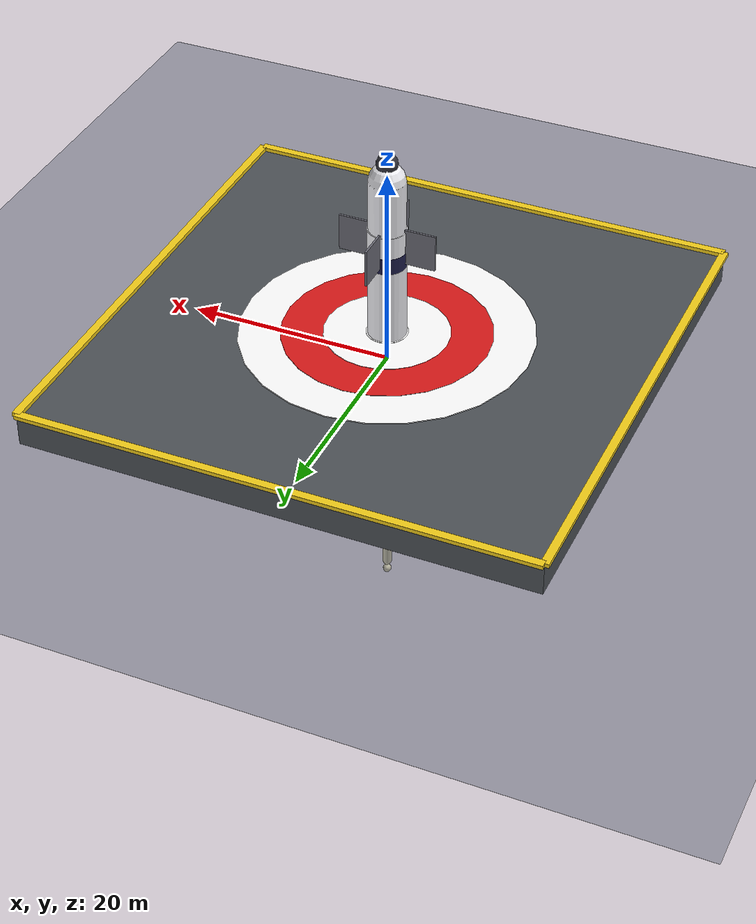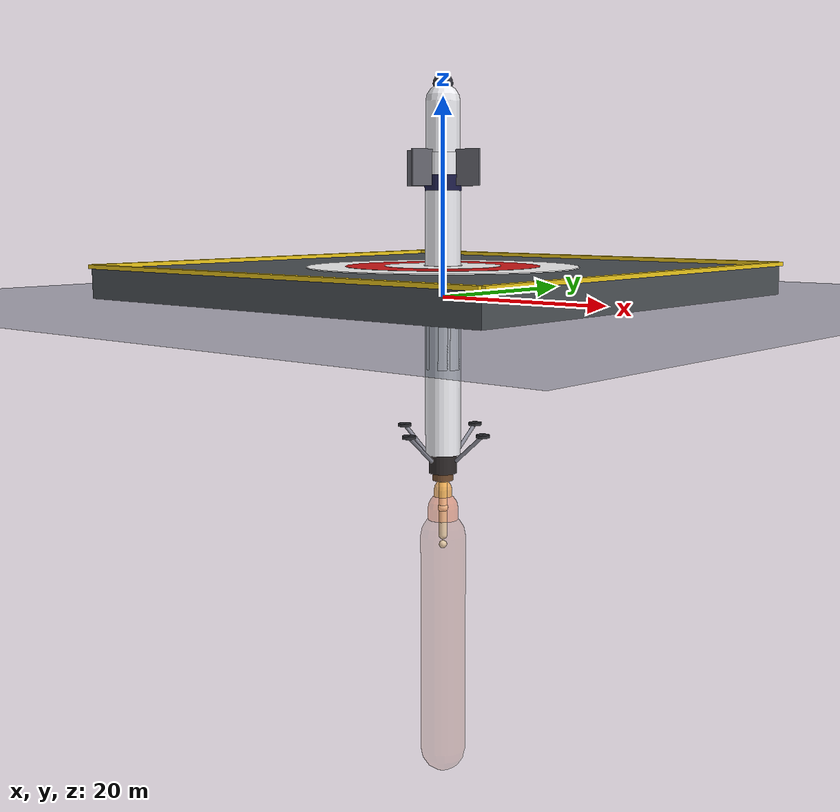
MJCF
<mujoco model="booster_cinematic">
  <option timestep="0.005" gravity="0 0 -9.81"/>
  <visual>
    <global offwidth="1280" offheight="720"/>
    <quality shadowsize="4096"/>
    <headlight ambient="0.22 0.24 0.30" diffuse="0.0 0.0 0.0" specular="0.0 0.0 0.0"/>
    <map shadowscale="0.5" fogstart="2000" fogend="6000"/>
  </visual>
  <asset>
    <!-- Sky: gradient — warm horizon to deep navy overhead -->
    <texture name="sky" type="skybox" builtin="gradient"
             rgb1="0.20 0.32 0.55" rgb2="0.96 0.55 0.28"
             width="1024" height="1024"/>
    <!-- Ocean: a near-uniform deep cobalt with subtle banding so it looks like
         water, not a chessboard. We use the 'flat' built-in type. -->
    <texture name="ocean_tex" type="2d" builtin="flat"
             rgb1="0.04 0.10 0.20" rgb2="0.04 0.10 0.20"
             width="100" height="100" mark="random" markrgb="0.06 0.16 0.28" random="0.10"/>
    <material name="ocean" texture="ocean_tex" texrepeat="40 40"
              reflectance="0.45" shininess="0.7" specular="0.7"/>
    <!-- Drone-ship deck -->
    <material name="deck"   rgba="0.30 0.32 0.34 1.0" reflectance="0.05"/>
    <material name="deck_edge" rgba="0.95 0.80 0.10 1.0"/>
    <material name="target_ring1" rgba="1.00 1.00 1.00 1.0"/>
    <material name="target_ring2" rgba="0.85 0.10 0.10 1.0"/>
    <material name="target_center" rgba="1.00 1.00 1.00 1.0"/>
    <!-- Booster materials -->
    <material name="booster_white" rgba="0.94 0.94 0.96 1.0" reflectance="0.30" shininess="0.5"/>
    <material name="booster_band"  rgba="0.18 0.18 0.20 1.0" reflectance="0.10"/>
    <material name="booster_logo"  rgba="0.12 0.12 0.30 1.0"/>
    <material name="nose_mat"      rgba="0.94 0.94 0.96 1.0" reflectance="0.30"/>
    <material name="nose_tip"      rgba="0.20 0.20 0.24 1.0"/>
    <material name="leg_mat"       rgba="0.55 0.55 0.60 1.0" reflectance="0.20"/>
    <material name="leg_pad"       rgba="0.18 0.18 0.20 1.0"/>
    <material name="fin_mat"       rgba="0.42 0.42 0.46 1.0" reflectance="0.15"/>
    <material name="engine_bell"   rgba="0.18 0.16 0.16 1.0" reflectance="0.05"/>
    <material name="engine_nozzle" rgba="0.45 0.30 0.18 1.0"/>
    <!-- Plume layers, with emission so they glow even on the unlit side of the booster -->
    <material name="plume_core"  rgba="1.00 0.95 0.80 0.95" emission="0.9"/>
    <material name="plume_mid"   rgba="1.00 0.65 0.20 0.65" emission="0.5"/>
    <material name="plume_outer" rgba="0.95 0.35 0.10 0.35" emission="0.3"/>
    <material name="plume_haze"  rgba="0.55 0.20 0.10 0.18" emission="0.1"/>
  </asset>
  <worldbody>
    <!-- Golden-hour sun (low elevation, raked from one side) -->
    <light name="sun" mode="targetbodycom" target="booster"
           pos="-3000 1500 1200" dir="0.6 -0.3 -0.7"
           diffuse="1.10 0.92 0.78" specular="0.5 0.42 0.35"
           castshadow="true"/>
    <!-- Cool blue fill -->
    <light name="fill" pos="2500 -1500 800" dir="-0.5 0.3 -0.5"
           diffuse="0.28 0.32 0.42" specular="0.0 0.0 0.0"
           castshadow="false"/>

    <!-- Ocean surface (huge plane, slight reflectance to give a water sheen) -->
    <geom name="ocean_surface" type="plane" size="6000 6000 1" material="ocean"/>

    <!-- Drone-ship deck -->
    <geom name="deck"        type="box" pos="0 0 1.5"   size="25 25 1.5"  material="deck"/>
    <geom name="deck_edge_n" type="box" pos="0  25 3.2" size="25 0.4 0.2" material="deck_edge"/>
    <geom name="deck_edge_s" type="box" pos="0 -25 3.2" size="25 0.4 0.2" material="deck_edge"/>
    <geom name="deck_edge_e" type="box" pos=" 25 0 3.2" size="0.4 25 0.2" material="deck_edge"/>
    <geom name="deck_edge_w" type="box" pos="-25 0 3.2" size="0.4 25 0.2" material="deck_edge"/>
    <!-- Concentric landing target -->
    <geom name="target_ring_outer" type="cylinder" pos="0 0 3.05" size="14 0.05" material="target_ring1"/>
    <geom name="target_ring_mid"   type="cylinder" pos="0 0 3.08" size="10 0.05" material="target_ring2"/>
    <geom name="target_ring_in"    type="cylinder" pos="0 0 3.11" size="6  0.05" material="target_ring1"/>
    <geom name="target_center"     type="cylinder" pos="0 0 3.14" size="2  0.05" material="target_center"/>

    <!-- BOOSTER ----------------------------------------------------------------- -->
    <body name="booster" pos="0 0 3.5">
      <freejoint name="root"/>

      <!-- Main hull: lower section + black band + upper section, all sharing axis -->
      <geom name="hull_lower" type="cylinder" pos="0 0 -12.0" size="1.85 8"
            material="booster_white"/>
      <geom name="hull_band"  type="cylinder" pos="0 0 -4.0"  size="1.8685 0.6"
            material="booster_band"/>
      <geom name="hull_upper" type="cylinder" pos="0 0 0"  size="1.85 11.0"
            material="booster_white"/>
      <!-- Logo band near top of upper hull -->
      <geom name="logo_band" type="cylinder" pos="0 0 8.0" size="1.8592499999999998 0.8"
            material="booster_logo"/>
      <!-- Nose cone — capsule centered to attach top of upper hull, plus a darker tip -->
      <geom name="nose" type="capsule" pos="0 0 13.5" size="1.7575 2.5"
            material="nose_mat"/>
      <geom name="nose_tip" type="sphere" pos="0 0 17.7575"
            size="1.0175" material="nose_tip"/>

      <!-- Grid fins: bigger, lattice-coloured, attached to body at the top section -->
      <geom name="fin_xp" type="box" pos=" 3.25 0  9.5"
            size="1.5 0.10 1.8" material="fin_mat"/>
      <geom name="fin_xn" type="box" pos="-3.25 0  9.5"
            size="1.5 0.10 1.8" material="fin_mat"/>
      <geom name="fin_yp" type="box" pos="0  3.25 9.5"
            size="0.10 1.5 1.8" material="fin_mat"/>
      <geom name="fin_yn" type="box" pos="0 -3.25 9.5"
            size="0.10 1.5 1.8" material="fin_mat"/>

      <!-- Four landing legs deployed, with foot pads (attached to body, not gimbal) -->
      <geom name="leg_xp" type="capsule"
            fromto=" 1.85 0 -20.5  5.35 0 -17.5"
            size="0.20" material="leg_mat"/>
      <geom name="leg_xn" type="capsule"
            fromto="-1.85 0 -20.5 -5.35 0 -17.5"
            size="0.20" material="leg_mat"/>
      <geom name="leg_yp" type="capsule"
            fromto="0  1.85 -20.5  0  5.35 -17.5"
            size="0.20" material="leg_mat"/>
      <geom name="leg_yn" type="capsule"
            fromto="0 -1.85 -20.5  0 -5.35 -17.5"
            size="0.20" material="leg_mat"/>
      <geom name="pad_xp" type="cylinder" pos=" 5.35 0 -17.5" size="0.7 0.15"
            material="leg_pad"/>
      <geom name="pad_xn" type="cylinder" pos="-5.35 0 -17.5" size="0.7 0.15"
            material="leg_pad"/>
      <geom name="pad_yp" type="cylinder" pos="0  5.35 -17.5" size="0.7 0.15"
            material="leg_pad"/>
      <geom name="pad_yn" type="cylinder" pos="0 -5.35 -17.5" size="0.7 0.15"
            material="leg_pad"/>

      <body name="gimbal_y" pos="0 0 -20.0">
        <inertial pos="0 0 0" mass="0.01" diaginertia="0.001 0.001 0.001"/>
        <joint name="gimbal_pitch" type="hinge" axis="0 1 0" damping="0.2"/>
        <body name="gimbal_z" pos="0 0 0">
          <inertial pos="0 0 0" mass="0.01" diaginertia="0.001 0.001 0.001"/>
          <joint name="gimbal_yaw" type="hinge" axis="1 0 0" damping="0.2"/>
          <geom name="engine_bell" type="cylinder" pos="0 0 -1.0" size="1.4800000000000002 1.0"
                material="engine_bell"/>
          <geom name="engine_nozzle" type="cylinder" pos="0 0 -2.4" size="1.11 0.4"
                material="engine_nozzle"/>
          <body name="plume" pos="0 0 -2.8">
            <inertial pos="0 0 0" mass="0.01" diaginertia="0.001 0.001 0.001"/>
            <joint name="plume_extend" type="slide" axis="0 0 1" damping="0.1"/>
            <geom name="plume_core"  type="capsule" fromto="0 0 0 0 0 -6"
                  size="0.45" material="plume_core"  contype="0" conaffinity="0"/>
            <geom name="plume_mid"   type="capsule" fromto="0 0 -1 0 0 -14"
                  size="0.95" material="plume_mid"   contype="0" conaffinity="0"/>
            <geom name="plume_outer" type="capsule" fromto="0 0 -3 0 0 -22"
                  size="1.60" material="plume_outer" contype="0" conaffinity="0"/>
            <geom name="plume_haze"  type="capsule" fromto="0 0 -6 0 0 -30"
                  size="2.40" material="plume_haze"  contype="0" conaffinity="0"/>
            <!-- Mach diamonds: small bright rings spaced along the plume -->
            <geom name="diamond1" type="sphere" pos="0 0 -3.0" size="0.55"
                  material="plume_core" contype="0" conaffinity="0"/>
            <geom name="diamond2" type="sphere" pos="0 0 -7.0" size="0.42"
                  material="plume_core" contype="0" conaffinity="0"/>
            <geom name="diamond3" type="sphere" pos="0 0 -11.5" size="0.32"
                  material="plume_mid"  contype="0" conaffinity="0"/>
          </body>
        </body>
      </body>
    </body>
  </worldbody>
</mujoco>
